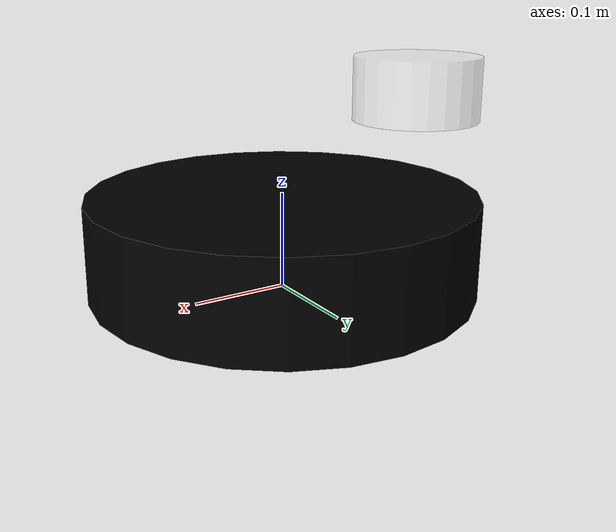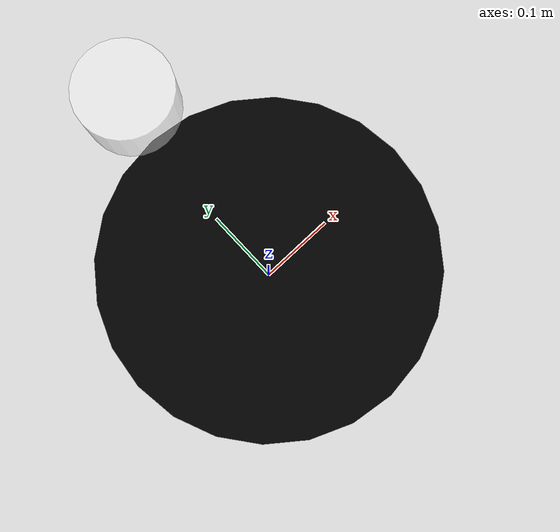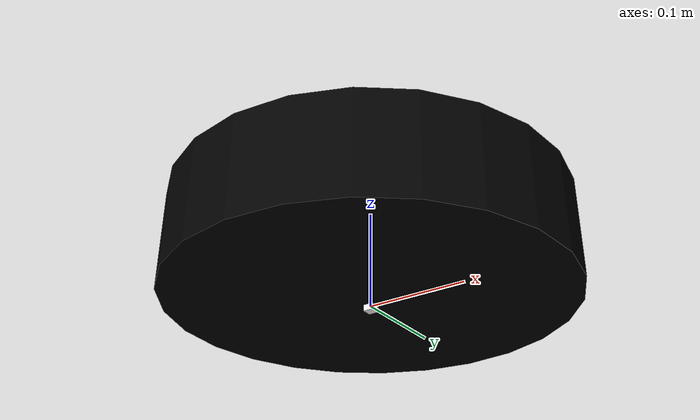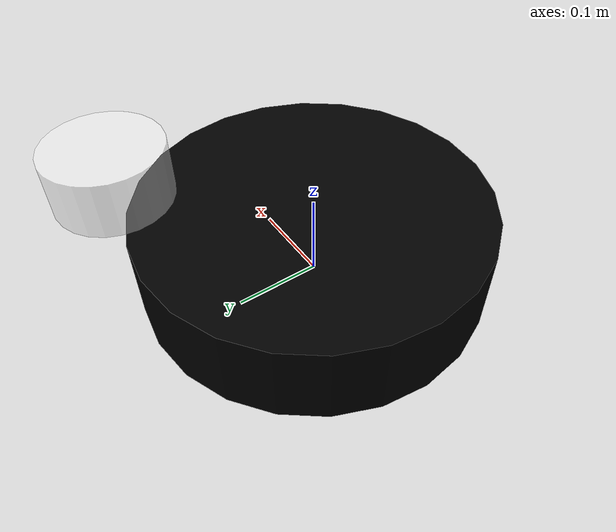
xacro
<?xml version="1.0"?>

<robot name="chuan_xx" xmlns:xacro="http://ros.org/wiki/xacro">

  <xacro:include filename="$(find chuan_bringup)/urdf/properties_xx.urdf.xacro" />
  <xacro:include filename="$(find chuan_bringup)/urdf/chuan.urdf.xacro" />
  <xacro:include filename="$(find chuan_bringup)/urdf/basefoot_xx.urdf.xacro" />

</robot>

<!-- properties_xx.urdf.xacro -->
<robot xmlns:xacro="http://ros.org/wiki/xacro">

    <material name="blue">
    <color rgba="0 0 0.8 0.5"/>
    </material>

    <material name="black">
        <color rgba="0 0 0 1"/>
    </material>

    <material name="white">
        <color rgba="1 1 1 0.5"/>
    </material>
</robot>

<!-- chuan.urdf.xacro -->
<robot name="chuan" xmlns:xacro="http://ros.org/wiki/xacro">

    <link name="base_link">
        <visual>
        <geometry>
            <cylinder length="0.1" radius="0.2"/>
        </geometry>
        <material name="black"/>
        </visual>
    </link>

    <link name="laser">
        <visual>
        <geometry>
            <cylinder length="0.05" radius="0.05"/>
        </geometry>
        <material name="white"/>
        </visual>
    </link>

    <joint name="laser_to_base_link" type="fixed">
        <parent link="base_link"/>
        <child link="laser"/>
        <origin rpy="0 0 0" xyz="0.0 0.2 0.18"/>
    </joint>

</robot>

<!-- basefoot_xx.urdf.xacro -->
<robot name="chuan_xx" xmlns:xacro="http://ros.org/wiki/xacro">

<!-- base_footprint is a fictitious link(frame) that is on the ground right below base_link origin,
         navigation stack dedpends on this frame -->
  <link name="base_footprint">
    <inertial>
      <mass value="1.0"/>
      <origin xyz="0 0 0"/>
      <inertia ixx="0.01" ixy="0.0" ixz="0.0" iyy="0.01" iyz="0.0" izz="0.01"/>
    </inertial>
    <visual>
      <origin rpy="0 0 0" xyz="0 0 0"/>
      <geometry>
        <box size="0.01 0.01 0.01"/>
      </geometry>
      <material name="White"/>
    </visual>
    <collision>
      <!-- represent base collision with a simple rectangular model, positioned by base_size_z s.t. top
             surface of the collision box matches the top surface of the PR2 base -->
      <origin rpy="0 0 0" xyz="0 0 0.071"/>
      <geometry>
        <box size="0.001 0.001 0.001"/>
      </geometry>
    </collision>
  </link>
  <joint name="base_footprint_joint" type="fixed">
    <origin rpy="0 0 0" xyz="0 0 0.051"/>
    <child link="base_link"/>
    <parent link="base_footprint"/>
  </joint>

</robot>
